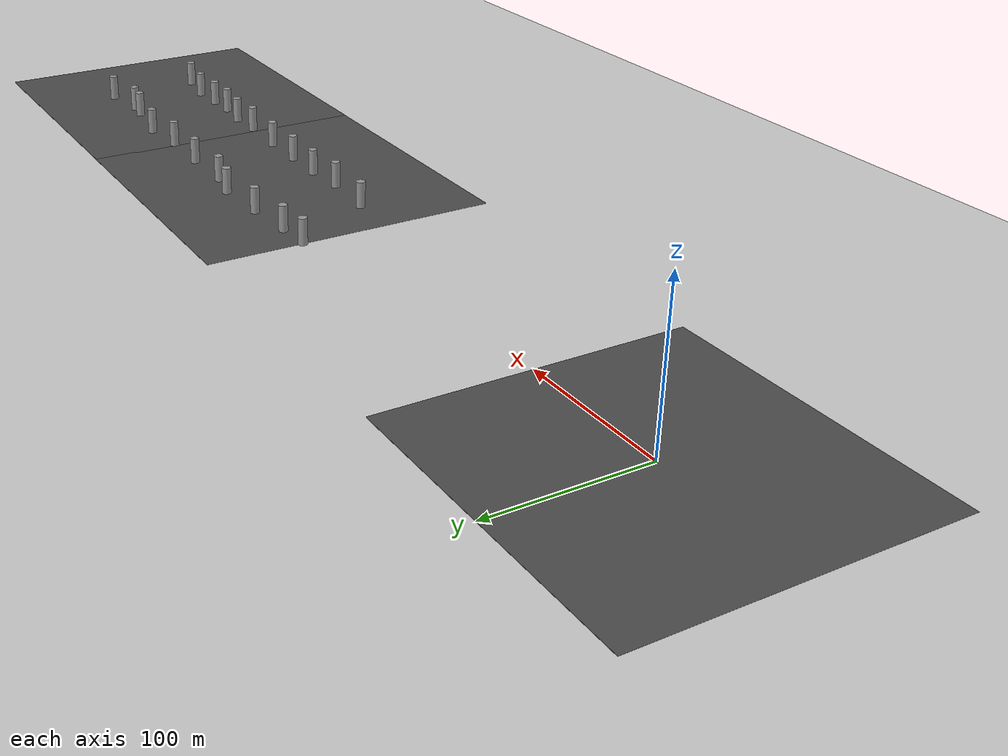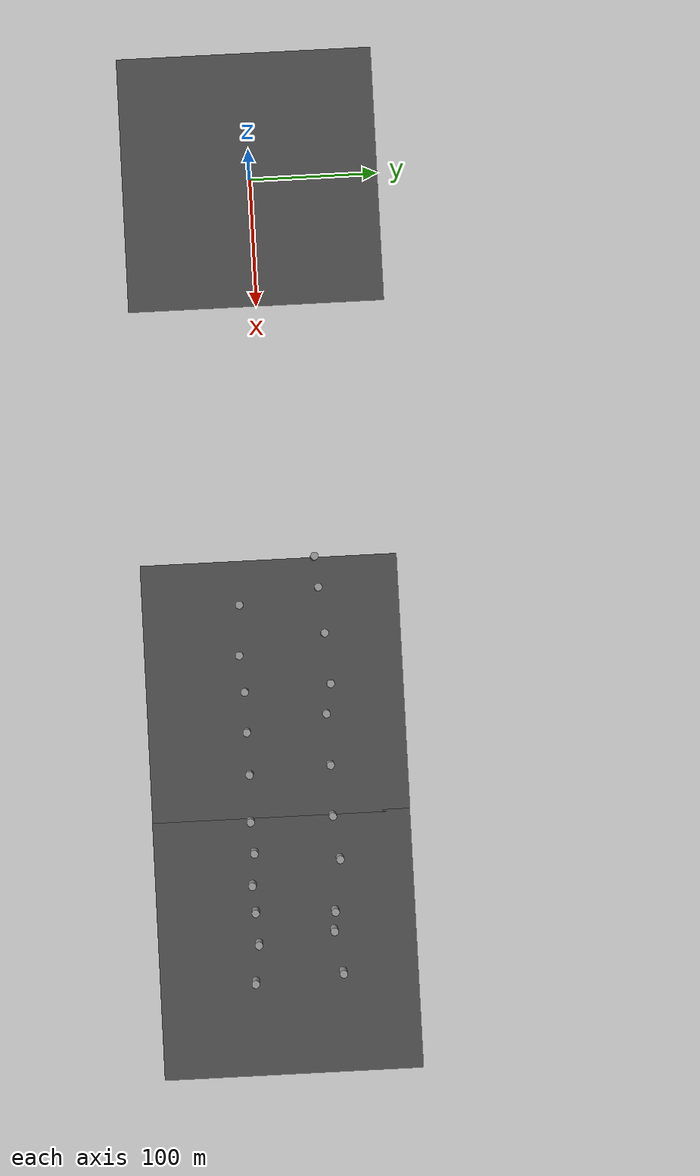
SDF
<sdf version="1.7">
 <world name="54world_world">
  <model name="ground_plane">
   <static>1</static>
   <link name="link">
    <collision name="collision">
     <geometry><plane><normal>0 0 1</normal><size>100 100</size></plane></geometry>
     <surface>
      <contact><collide_bitmask>65535</collide_bitmask></contact>
      <friction><ode><mu>100</mu><mu2>50</mu2></ode></friction>
     </surface>
    </collision>
    <visual name="visual">
     <cast_shadows>0</cast_shadows>
     <geometry><plane><normal>0 0 1</normal><size>100 100</size></plane></geometry>
     <material>
      <script><uri>file://media/materials/scripts/gazebo.material</uri><name>Gazebo/Grey</name></script>
     </material>
    </visual>
   </link>
  </model>
  <model name="asphalt_plane">
   <static>1</static>
   <link name="link">
    <collision name="collision"><geometry><box><size>200 200 0.1</size></box></geometry></collision>
    <visual name="visual">
     <cast_shadows>0</cast_shadows>
     <geometry><box><size>200 200 0.1</size></box></geometry>
     <material>
      <script>
       <uri>model://asphalt_plane/materials/scripts</uri>
       <uri>model://asphalt_plane/materials/textures</uri>
       <name>vrc/asphalt</name>
      </script>
     </material>
    </visual>
   </link>
  </model>
  <model name="asphalt_plane_clone_0">
   <static>1</static>
   <link name="link">
    <collision name="collision"><geometry><box><size>200 200 0.1</size></box></geometry></collision>
    <visual name="visual">
     <cast_shadows>0</cast_shadows>
     <geometry><box><size>200 200 0.1</size></box></geometry>
     <material>
      <script>
       <uri>model://asphalt_plane/materials/scripts</uri>
       <uri>model://asphalt_plane/materials/textures</uri>
       <name>vrc/asphalt</name>
      </script>
     </material>
    </visual>
   </link>
   <pose>398.814 -0.893429 0 0 -0 0</pose>
  </model>
  <model name="asphalt_plane_clone_1">
   <static>1</static>
   <link name="link">
    <collision name="collision"><geometry><box><size>200 200 0.1</size></box></geometry></collision>
    <visual name="visual">
     <cast_shadows>0</cast_shadows>
     <geometry><box><size>200 200 0.1</size></box></geometry>
     <material>
      <script>
       <uri>model://asphalt_plane/materials/scripts</uri>
       <uri>model://asphalt_plane/materials/textures</uri>
       <name>vrc/asphalt</name>
      </script>
     </material>
    </visual>
   </link>
   <pose>597.124 -1.08674 0 0 -0 0</pose>
  </model>
  <model name="unit_cylinder_clone_19">
   <pose>298.422 34.9192 9.116 2e-06 1e-05 0.4955</pose>
   <link name="link">
    <inertial>
     <mass>1</mass>
     <inertia><ixx>0.145833</ixx><ixy>0</ixy><ixz>0</ixz><iyy>0.145833</iyy><iyz>0</iyz><izz>0.125</izz></inertia>
    </inertial>
    <collision name="collision">
     <geometry><cylinder><radius>3.02176</radius><length>18.132</length></cylinder></geometry>
    </collision>
    <visual name="visual">
     <geometry><cylinder><radius>3.02176</radius><length>18.132</length></cylinder></geometry>
     <material>
      <script><name>Gazebo/Grey</name><uri>file://media/materials/scripts/gazebo.material</uri></script>
     </material>
    </visual>
   </link>
  </model>
  <model name="unit_cylinder_clone_21">
   <pose>322.387 36.7339 9.116 -7.7e-05 -1.5e-05 0.395872</pose>
   <link name="link">
    <inertial>
     <mass>1</mass>
     <inertia><ixx>0.145833</ixx><ixy>0</ixy><ixz>0</ixz><iyy>0.145833</iyy><iyz>0</iyz><izz>0.125</izz></inertia>
    </inertial>
    <collision name="collision">
     <geometry><cylinder><radius>3.02176</radius><length>18.132</length></cylinder></geometry>
    </collision>
    <visual name="visual">
     <geometry><cylinder><radius>3.02176</radius><length>18.132</length></cylinder></geometry>
     <material>
      <script><name>Gazebo/Grey</name><uri>file://media/materials/scripts/gazebo.material</uri></script>
     </material>
    </visual>
   </link>
  </model>
  <model name="unit_cylinder_clone_22">
   <pose>333.175 -24.8764 9.11606 -4.7e-05 -8e-05 0.406403</pose>
   <link name="link">
    <inertial>
     <mass>1</mass>
     <inertia><ixx>0.145833</ixx><ixy>0</ixy><ixz>0</ixz><iyy>0.145833</iyy><iyz>0</iyz><izz>0.125</izz></inertia>
    </inertial>
    <collision name="collision">
     <geometry><cylinder><radius>3.02176</radius><length>18.132</length></cylinder></geometry>
    </collision>
    <visual name="visual">
     <geometry><cylinder><radius>3.02176</radius><length>18.132</length></cylinder></geometry>
     <material>
      <script><name>Gazebo/Grey</name><uri>file://media/materials/scripts/gazebo.material</uri></script>
     </material>
    </visual>
   </link>
  </model>
  <model name="unit_cylinder_clone_23">
   <pose>358.029 39.8754 9.11597 -3.6e-05 8e-06 0.402369</pose>
   <link name="link">
    <inertial>
     <mass>1</mass>
     <inertia><ixx>0.145833</ixx><ixy>0</ixy><ixz>0</ixz><iyy>0.145833</iyy><iyz>0</iyz><izz>0.125</izz></inertia>
    </inertial>
    <collision name="collision">
     <geometry><cylinder><radius>3.02176</radius><length>18.132</length></cylinder></geometry>
    </collision>
    <visual name="visual">
     <geometry><cylinder><radius>3.02176</radius><length>18.132</length></cylinder></geometry>
     <material>
      <script><name>Gazebo/Grey</name><uri>file://media/materials/scripts/gazebo.material</uri></script>
     </material>
    </visual>
   </link>
  </model>
  <model name="unit_cylinder_clone_24">
   <pose>372.216 -26.8778 9.11602 1.5e-05 -9.7e-05 0.427788</pose>
   <link name="link">
    <inertial>
     <mass>1</mass>
     <inertia><ixx>0.145833</ixx><ixy>0</ixy><ixz>0</ixz><iyy>0.145833</iyy><iyz>0</iyz><izz>0.125</izz></inertia>
    </inertial>
    <collision name="collision">
     <geometry><cylinder><radius>3.02176</radius><length>18.132</length></cylinder></geometry>
    </collision>
    <visual name="visual">
     <geometry><cylinder><radius>3.02176</radius><length>18.132</length></cylinder></geometry>
     <material>
      <script><name>Gazebo/Grey</name><uri>file://media/materials/scripts/gazebo.material</uri></script>
     </material>
    </visual>
   </link>
  </model>
  <model name="unit_cylinder_clone_25">
   <pose>397.265 42.3834 9.13719 0.006135 -0.005493 0.475143</pose>
   <link name="link">
    <inertial>
     <mass>1</mass>
     <inertia><ixx>0.145833</ixx><ixy>0</ixy><ixz>0</ixz><iyy>0.145833</iyy><iyz>0</iyz><izz>0.125</izz></inertia>
    </inertial>
    <collision name="collision">
     <geometry><cylinder><radius>3.02176</radius><length>18.132</length></cylinder></geometry>
    </collision>
    <visual name="visual">
     <geometry><cylinder><radius>3.02176</radius><length>18.132</length></cylinder></geometry>
     <material>
      <script><name>Gazebo/Grey</name><uri>file://media/materials/scripts/gazebo.material</uri></script>
     </material>
    </visual>
   </link>
  </model>
  <model name="unit_cylinder_clone_26">
   <pose>400.532 -24.1563 9.11602 6.5e-05 5e-06 0.432599</pose>
   <link name="link">
    <inertial>
     <mass>1</mass>
     <inertia><ixx>0.145833</ixx><ixy>0</ixy><ixz>0</ixz><iyy>0.145833</iyy><iyz>0</iyz><izz>0.125</izz></inertia>
    </inertial>
    <collision name="collision">
     <geometry><cylinder><radius>3.02176</radius><length>18.132</length></cylinder></geometry>
    </collision>
    <visual name="visual">
     <geometry><cylinder><radius>3.02176</radius><length>18.132</length></cylinder></geometry>
     <material>
      <script><name>Gazebo/Grey</name><uri>file://media/materials/scripts/gazebo.material</uri></script>
     </material>
    </visual>
   </link>
  </model>
  <model name="unit_cylinder_clone_27">
   <pose>420.226 37.914 9.11598 3.4e-05 2.1e-05 0.459938</pose>
   <link name="link">
    <inertial>
     <mass>1</mass>
     <inertia><ixx>0.145833</ixx><ixy>0</ixy><ixz>0</ixz><iyy>0.145833</iyy><iyz>0</iyz><izz>0.125</izz></inertia>
    </inertial>
    <collision name="collision">
     <geometry><cylinder><radius>3.02176</radius><length>18.132</length></cylinder></geometry>
    </collision>
    <visual name="visual">
     <geometry><cylinder><radius>3.02176</radius><length>18.132</length></cylinder></geometry>
     <material>
      <script><name>Gazebo/Grey</name><uri>file://media/materials/scripts/gazebo.material</uri></script>
     </material>
    </visual>
   </link>
  </model>
  <model name="unit_cylinder_clone_28">
   <pose>431.586 -24.129 9.11599 8.2e-05 -1.9e-05 0.425077</pose>
   <link name="link">
    <inertial>
     <mass>1</mass>
     <inertia><ixx>0.145833</ixx><ixy>0</ixy><ixz>0</ixz><iyy>0.145833</iyy><iyz>0</iyz><izz>0.125</izz></inertia>
    </inertial>
    <collision name="collision">
     <geometry><cylinder><radius>3.02176</radius><length>18.132</length></cylinder></geometry>
    </collision>
    <visual name="visual">
     <geometry><cylinder><radius>3.02176</radius><length>18.132</length></cylinder></geometry>
     <material>
      <script><name>Gazebo/Grey</name><uri>file://media/materials/scripts/gazebo.material</uri></script>
     </material>
    </visual>
   </link>
  </model>
  <model name="unit_cylinder_clone_29">
   <pose>459.816 38.9592 9.116 1.4e-05 1.8e-05 0.458909</pose>
   <link name="link">
    <inertial>
     <mass>1</mass>
     <inertia><ixx>0.145833</ixx><ixy>0</ixy><ixz>0</ixz><iyy>0.145833</iyy><iyz>0</iyz><izz>0.125</izz></inertia>
    </inertial>
    <collision name="collision">
     <geometry><cylinder><radius>3.02176</radius><length>18.132</length></cylinder></geometry>
    </collision>
    <visual name="visual">
     <geometry><cylinder><radius>3.02176</radius><length>18.132</length></cylinder></geometry>
     <material>
      <script><name>Gazebo/Grey</name><uri>file://media/materials/scripts/gazebo.material</uri></script>
     </material>
    </visual>
   </link>
  </model>
  <model name="unit_cylinder_clone_30">
   <pose>464.196 -23.7653 9.116 3.7e-05 4.7e-05 0.437122</pose>
   <link name="link">
    <inertial>
     <mass>1</mass>
     <inertia><ixx>0.145833</ixx><ixy>0</ixy><ixz>0</ixz><iyy>0.145833</iyy><iyz>0</iyz><izz>0.125</izz></inertia>
    </inertial>
    <collision name="collision">
     <geometry><cylinder><radius>3.02176</radius><length>18.132</length></cylinder></geometry>
    </collision>
    <visual name="visual">
     <geometry><cylinder><radius>3.02176</radius><length>18.132</length></cylinder></geometry>
     <material>
      <script><name>Gazebo/Grey</name><uri>file://media/materials/scripts/gazebo.material</uri></script>
     </material>
    </visual>
   </link>
  </model>
  <model name="unit_cylinder_clone_31">
   <pose>499.015 38.6725 9.11598 -2.5e-05 3.1e-05 0.476392</pose>
   <link name="link">
    <inertial>
     <mass>1</mass>
     <inertia><ixx>0.145833</ixx><ixy>0</ixy><ixz>0</ixz><iyy>0.145833</iyy><iyz>0</iyz><izz>0.125</izz></inertia>
    </inertial>
    <collision name="collision">
     <geometry><cylinder><radius>3.02176</radius><length>18.132</length></cylinder></geometry>
    </collision>
    <visual name="visual">
     <geometry><cylinder><radius>3.02176</radius><length>18.132</length></cylinder></geometry>
     <material>
      <script><name>Gazebo/Grey</name><uri>file://media/materials/scripts/gazebo.material</uri></script>
     </material>
    </visual>
   </link>
  </model>
  <model name="unit_cylinder_clone_32">
   <pose>500.5 -24.6798 9.11602 1.9e-05 2.1e-05 0.475166</pose>
   <link name="link">
    <inertial>
     <mass>1</mass>
     <inertia><ixx>0.145833</ixx><ixy>0</ixy><ixz>0</ixz><iyy>0.145833</iyy><iyz>0</iyz><izz>0.125</izz></inertia>
    </inertial>
    <collision name="collision">
     <geometry><cylinder><radius>3.02176</radius><length>18.132</length></cylinder></geometry>
    </collision>
    <visual name="visual">
     <geometry><cylinder><radius>3.02176</radius><length>18.132</length></cylinder></geometry>
     <material>
      <script><name>Gazebo/Grey</name><uri>file://media/materials/scripts/gazebo.material</uri></script>
     </material>
    </visual>
   </link>
  </model>
  <model name="unit_cylinder_clone_33">
   <pose>532.329 42.6613 9.11602 3e-06 -0.0001 0.439397</pose>
   <link name="link">
    <inertial>
     <mass>1</mass>
     <inertia><ixx>0.145833</ixx><ixy>0</ixy><ixz>0</ixz><iyy>0.145833</iyy><iyz>0</iyz><izz>0.125</izz></inertia>
    </inertial>
    <collision name="collision">
     <geometry><cylinder><radius>3.02176</radius><length>18.132</length></cylinder></geometry>
    </collision>
    <visual name="visual">
     <geometry><cylinder><radius>3.02176</radius><length>18.132</length></cylinder></geometry>
     <material>
      <script><name>Gazebo/Grey</name><uri>file://media/materials/scripts/gazebo.material</uri></script>
     </material>
    </visual>
   </link>
  </model>
  <model name="unit_cylinder_clone_34">
   <pose>524.736 -23.0646 9.11611 -4.6e-05 -9.3e-05 0.452652</pose>
   <link name="link">
    <inertial>
     <mass>1</mass>
     <inertia><ixx>0.145833</ixx><ixy>0</ixy><ixz>0</ixz><iyy>0.145833</iyy><iyz>0</iyz><izz>0.125</izz></inertia>
    </inertial>
    <collision name="collision">
     <geometry><cylinder><radius>3.02176</radius><length>18.132</length></cylinder></geometry>
    </collision>
    <visual name="visual">
     <geometry><cylinder><radius>3.02176</radius><length>18.132</length></cylinder></geometry>
     <material>
      <script><name>Gazebo/Grey</name><uri>file://media/materials/scripts/gazebo.material</uri></script>
     </material>
    </visual>
   </link>
  </model>
  <model name="unit_cylinder_clone_35">
   <pose>572.219 36.9838 9.116 -1e-06 -7.8e-05 0.465425</pose>
   <link name="link">
    <inertial>
     <mass>1</mass>
     <inertia><ixx>0.145833</ixx><ixy>0</ixy><ixz>0</ixz><iyy>0.145833</iyy><iyz>0</iyz><izz>0.125</izz></inertia>
    </inertial>
    <collision name="collision">
     <geometry><cylinder><radius>3.02176</radius><length>18.132</length></cylinder></geometry>
    </collision>
    <visual name="visual">
     <geometry><cylinder><radius>3.02176</radius><length>18.132</length></cylinder></geometry>
     <material>
      <script><name>Gazebo/Grey</name><uri>file://media/materials/scripts/gazebo.material</uri></script>
     </material>
    </visual>
   </link>
  </model>
  <model name="unit_cylinder_clone_36">
   <pose>570.155 -24.3784 9.11604 -3.9e-05 -5.2e-05 0.464006</pose>
   <link name="link">
    <inertial>
     <mass>1</mass>
     <inertia><ixx>0.145833</ixx><ixy>0</ixy><ixz>0</ixz><iyy>0.145833</iyy><iyz>0</iyz><izz>0.125</izz></inertia>
    </inertial>
    <collision name="collision">
     <geometry><cylinder><radius>3.02176</radius><length>18.132</length></cylinder></geometry>
    </collision>
    <visual name="visual">
     <geometry><cylinder><radius>3.02176</radius><length>18.132</length></cylinder></geometry>
     <material>
      <script><name>Gazebo/Grey</name><uri>file://media/materials/scripts/gazebo.material</uri></script>
     </material>
    </visual>
   </link>
  </model>
  <model name="unit_cylinder_clone_37">
   <pose>549.426 -25.7815 9.11607 3.6e-05 6.2e-05 0.467983</pose>
   <link name="link">
    <inertial>
     <mass>1</mass>
     <inertia><ixx>0.145833</ixx><ixy>0</ixy><ixz>0</ixz><iyy>0.145833</iyy><iyz>0</iyz><izz>0.125</izz></inertia>
    </inertial>
    <collision name="collision">
     <geometry><cylinder><radius>3.02176</radius><length>18.132</length></cylinder></geometry>
    </collision>
    <visual name="visual">
     <geometry><cylinder><radius>3.02176</radius><length>18.132</length></cylinder></geometry>
     <material>
      <script><name>Gazebo/Grey</name><uri>file://media/materials/scripts/gazebo.material</uri></script>
     </material>
    </visual>
   </link>
  </model>
  <model name="unit_cylinder_clone_38">
   <pose>587.01 35.4345 9.11598 3.1e-05 2.3e-05 0.476317</pose>
   <link name="link">
    <inertial>
     <mass>1</mass>
     <inertia><ixx>0.145833</ixx><ixy>0</ixy><ixz>0</ixz><iyy>0.145833</iyy><iyz>0</iyz><izz>0.125</izz></inertia>
    </inertial>
    <collision name="collision">
     <geometry><cylinder><radius>3.02176</radius><length>18.132</length></cylinder></geometry>
    </collision>
    <visual name="visual">
     <geometry><cylinder><radius>3.02176</radius><length>18.132</length></cylinder></geometry>
     <material>
      <script><name>Gazebo/Grey</name><uri>file://media/materials/scripts/gazebo.material</uri></script>
     </material>
    </visual>
   </link>
  </model>
  <model name="unit_cylinder_clone_39">
   <pose>594.721 -22.9199 9.11597 -4.7e-05 1e-05 0.474814</pose>
   <link name="link">
    <inertial>
     <mass>1</mass>
     <inertia><ixx>0.145833</ixx><ixy>0</ixy><ixz>0</ixz><iyy>0.145833</iyy><iyz>0</iyz><izz>0.125</izz></inertia>
    </inertial>
    <collision name="collision">
     <geometry><cylinder><radius>3.02176</radius><length>18.132</length></cylinder></geometry>
    </collision>
    <visual name="visual">
     <geometry><cylinder><radius>3.02176</radius><length>18.132</length></cylinder></geometry>
     <material>
      <script><name>Gazebo/Grey</name><uri>file://media/materials/scripts/gazebo.material</uri></script>
     </material>
    </visual>
   </link>
  </model>
  <model name="unit_cylinder_clone_40">
   <pose>619.626 40.721 9.11599 4.5e-05 -2.5e-05 0.480857</pose>
   <link name="link">
    <inertial>
     <mass>1</mass>
     <inertia><ixx>0.145833</ixx><ixy>0</ixy><ixz>0</ixz><iyy>0.145833</iyy><iyz>0</iyz><izz>0.125</izz></inertia>
    </inertial>
    <collision name="collision">
     <geometry><cylinder><radius>3.02176</radius><length>18.132</length></cylinder></geometry>
    </collision>
    <visual name="visual">
     <geometry><cylinder><radius>3.02176</radius><length>18.132</length></cylinder></geometry>
     <material>
      <script><name>Gazebo/Grey</name><uri>file://media/materials/scripts/gazebo.material</uri></script>
     </material>
    </visual>
   </link>
  </model>
  <model name="unit_cylinder_clone_41">
   <pose>623.993 -26.9775 9.11606 -3.2e-05 -9.5e-05 0.480936</pose>
   <link name="link">
    <inertial>
     <mass>1</mass>
     <inertia><ixx>0.145833</ixx><ixy>0</ixy><ixz>0</ixz><iyy>0.145833</iyy><iyz>0</iyz><izz>0.125</izz></inertia>
    </inertial>
    <collision name="collision">
     <geometry><cylinder><radius>3.02176</radius><length>18.132</length></cylinder></geometry>
    </collision>
    <visual name="visual">
     <geometry><cylinder><radius>3.02176</radius><length>18.132</length></cylinder></geometry>
     <material>
      <script><name>Gazebo/Grey</name><uri>file://media/materials/scripts/gazebo.material</uri></script>
     </material>
    </visual>
   </link>
  </model>
 </world>
</sdf>
